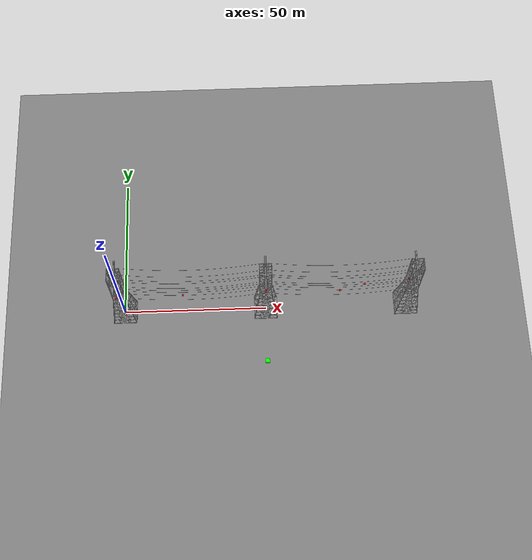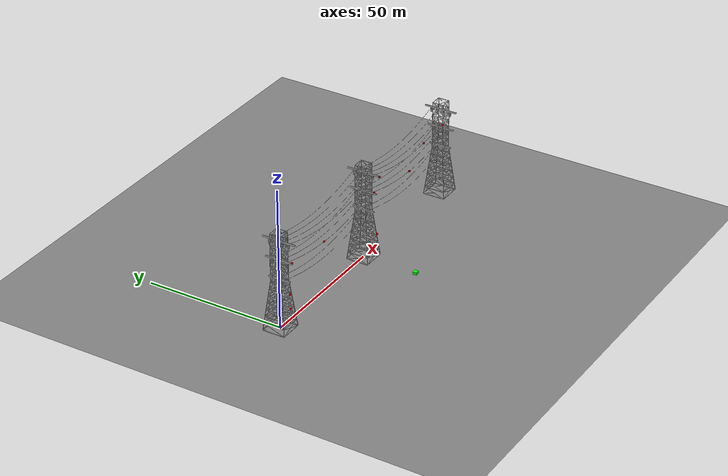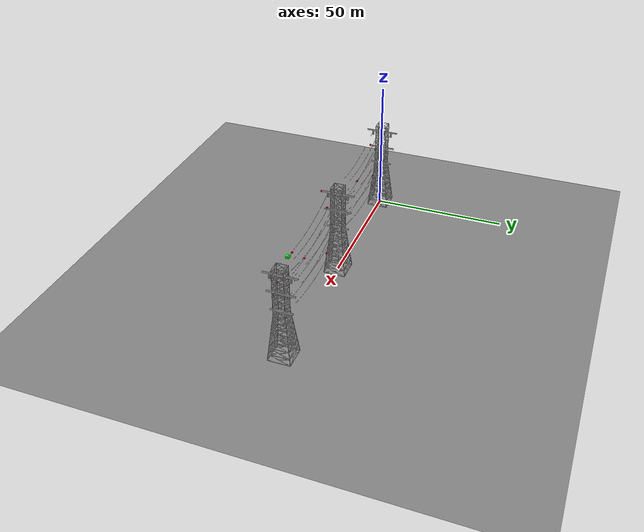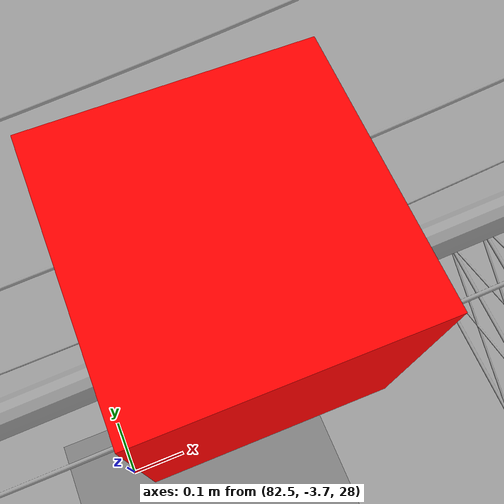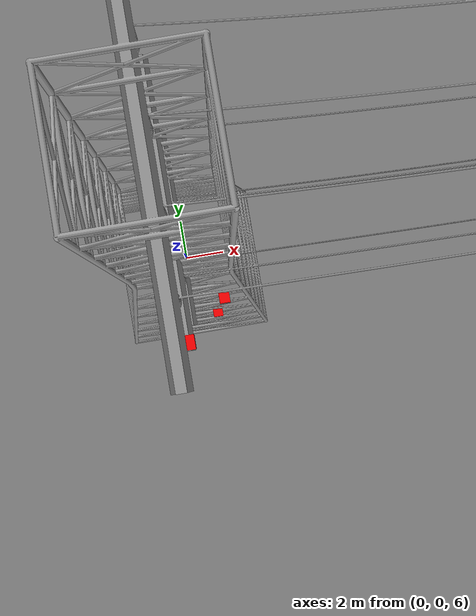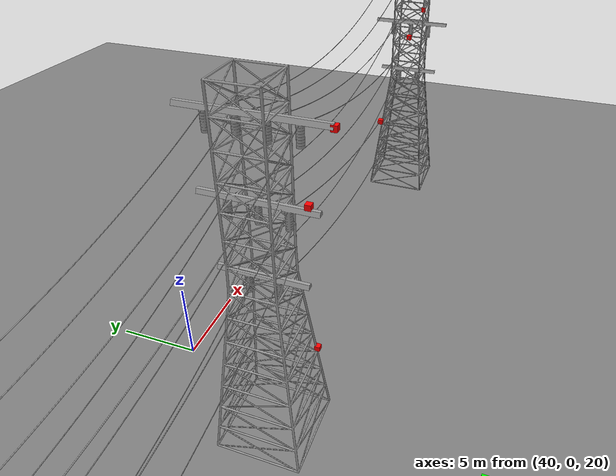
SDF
<?xml version="1.0"?>
<sdf version='1.8'>
  <world name='powerline_10_poi'>
    <!-- Set gravity vector -->
  <gravity>0 0 -9.8</gravity>
    <!-- Basic lighting -->
    <light name='sun' type='directional'>
      <cast_shadows>true</cast_shadows>
      <pose>0 0 10 0 -0 0</pose>
      <diffuse>0.8 0.8 0.8 1</diffuse>
      <specular>0.1 0.1 0.1 1</specular>
      <attenuation>
        <range>1000</range>
        <constant>0.9</constant>
        <linear>0.01</linear>
        <quadratic>0.001</quadratic>
      </attenuation>
      <direction>-0.5 0.5 -1</direction>
    </light>

    <!-- Ground plane -->
    <model name='ground_plane'>
      <static>true</static>
      <link name='link'>
        <collision name='collision'>
          <geometry>
            <plane>
              <normal>0 0 1</normal>
              <size>2000 2000</size>
            </plane>
          </geometry>
          <surface>
            <friction>
              <ode>
                <mu>100</mu>
                <mu2>50</mu2>
              </ode>
            </friction>
          </surface>
        </collision>
        <visual name='visual'>
          <cast_shadows>false</cast_shadows>
          <geometry>
            <plane>
              <normal>0 0 1</normal>
              <size>2000 2000</size>
            </plane>
          </geometry>
          <material>
            <ambient>0.5 0.5 0.5 1</ambient>
            <diffuse>0.5 0.5 0.5 1</diffuse>
            <specular>0.1 0.1 0.1 1</specular>
          </material>
        </visual>
      </link>
    </model>

    <!-- The Powerline model -->
    <model name='powerline'>
      <pose>0 0 0 0 0 0</pose>
      <static>true</static>
      <link name='body'>
        <collision name='collision'>
          <geometry>
            <mesh>
              <uri>model://powerline/powerLine.stl</uri>
              <scale>1 1 1</scale>
            </mesh>
          </geometry>
          <surface>
            <friction>
              <ode>
                <mu>0.8</mu>
                <mu2>0.8</mu2>
              </ode>
            </friction>
          </surface>
        </collision>
        <visual name='visual'>
          <geometry>
            <mesh>
              <uri>model://powerline/powerLine.stl</uri>
            </mesh>
          </geometry>
          <material>
            <ambient>0.6 0.6 0.6 1</ambient>
            <diffuse>0.6 0.6 0.6 1</diffuse>
            <specular>0.1 0.1 0.1 1</specular>
          </material>
        </visual>
      </link>
    </model>

    <!-- GCS Model (Box for now)-->
    <model name='gcs'>
      <pose>50 -20 0 0.0 0.0 0.0</pose>
      <static>true</static>
      <link name='link'>
        <collision name='collision'>
          <geometry>
            <box>
              <size>1.5 1.5 1.5</size>
            </box>
          </geometry>
          <surface>
            <friction>
              <ode>
                <mu>0.8</mu>
                <mu2>0.8</mu2>
              </ode>
            </friction>
          </surface>
        </collision>
        <visual name='visual'>
          <geometry>
            <box>
              <size>1.5 1.5 1.5</size>
            </box>
          </geometry>
          <material>
            <ambient>0.0 1.0 0.0 1.0</ambient>
            <diffuse>0.0 1.0 0.0 1.0</diffuse>
            <specular>0.0 0.2 0.0 1.0</specular>
          </material>
        </visual>
      </link>
    </model>

<!-- Points of Interest (POI) -->
    <model name="poi_0000">
    <static>true</static>
    <link name="link">
      <visual name="visual">
        <geometry>
          <box>
            <size>0.5 0.5 0.5</size>
          </box>
        </geometry>
        <material>
          <ambient>1 0 0 1</ambient>
          <diffuse>1 0 0 1</diffuse>
          <specular>0.2 0 0 1</specular>
        </material>
      </visual>
    </link>
    <pose>0.08 -4.728 25.428 0.0 0.0 0.0</pose>
  </model>

  <model name="poi_0001">
    <static>true</static>
    <link name="link">
      <visual name="visual">
        <geometry>
          <box>
            <size>0.5 0.5 0.5</size>
          </box>
        </geometry>
        <material>
          <ambient>1 0 0 1</ambient>
          <diffuse>1 0 0 1</diffuse>
          <specular>0.2 0 0 1</specular>
        </material>
      </visual>
    </link>
    <pose>1.21 -3.25 7.54 0.0 0.0 0.0</pose>
  </model>

  <model name="poi_0002">
    <static>true</static>
    <link name="link">
      <visual name="visual">
        <geometry>
          <box>
            <size>0.5 0.5 0.5</size>
          </box>
        </geometry>
        <material>
          <ambient>1 0 0 1</ambient>
          <diffuse>1 0 0 1</diffuse>
          <specular>0.2 0 0 1</specular>
        </material>
      </visual>
    </link>
    <pose>97.88 -2.04 27.57 0.0 0.0 0.0</pose>
  </model>

  <model name="poi_0003">
    <static>true</static>
    <link name="link">
      <visual name="visual">
        <geometry>
          <box>
            <size>0.5 0.5 0.5</size>
          </box>
        </geometry>
        <material>
          <ambient>1 0 0 1</ambient>
          <diffuse>1 0 0 1</diffuse>
          <specular>0.2 0 0 1</specular>
        </material>
      </visual>
    </link>
    <pose>50.02 -6.01 32.07 0.0 0.0 0.0</pose>
  </model>

  <model name="poi_0004">
    <static>true</static>
    <link name="link">
      <visual name="visual">
        <geometry>
          <box>
            <size>0.5 0.5 0.5</size>
          </box>
        </geometry>
        <material>
          <ambient>1 0 0 1</ambient>
          <diffuse>1 0 0 1</diffuse>
          <specular>0.2 0 0 1</specular>
        </material>
      </visual>
    </link>
    <pose>21.93 -2.5944 21.20 0.0 0.0 0.0</pose>
  </model>

  <model name="poi_0005">
    <static>true</static>
    <link name="link">
      <visual name="visual">
        <geometry>
          <box>
            <size>0.5 0.5 0.5</size>
          </box>
        </geometry>
        <material>
          <ambient>1 0 0 1</ambient>
          <diffuse>1 0 0 1</diffuse>
          <specular>0.2 0 0 1</specular>
        </material>
      </visual>
    </link>
    <pose>50.04 -4.05 25.5996 0.0 0.0 0.0</pose>
  </model>

  <model name="poi_0006">
    <static>true</static>
    <link name="link">
      <visual name="visual">
        <geometry>
          <box>
            <size>0.5 0.5 0.5</size>
          </box>
        </geometry>
        <material>
          <ambient>1 0 0 1</ambient>
          <diffuse>1 0 0 1</diffuse>
          <specular>0.2 0 0 1</specular>
        </material>
      </visual>
    </link>
    <pose>75.04 -2.5487 20.95 0.0 0.0 0.0</pose>
  </model>

  <model name="poi_0007">
    <static>true</static>
    <link name="link">
      <visual name="visual">
        <geometry>
          <box>
            <size>0.5 0.5 0.5</size>
          </box>
        </geometry>
        <material>
          <ambient>1 0 0 1</ambient>
          <diffuse>1 0 0 1</diffuse>
          <specular>0.2 0 0 1</specular>
        </material>
      </visual>
    </link>
    <pose>1.62 -2.823 12.45 0.0 0.0 0.0</pose>
  </model>

  <model name="poi_0008">
    <static>true</static>
    <link name="link">
      <visual name="visual">
        <geometry>
          <box>
            <size>0.5 0.5 0.5</size>
          </box>
        </geometry>
        <material>
          <ambient>1 0 0 1</ambient>
          <diffuse>1 0 0 1</diffuse>
          <specular>0.2 0 0 1</specular>
        </material>
      </visual>
    </link>
    <pose>82.78 -3.48 28.23 0.0 0.0 0.0</pose>
  </model>

  <model name="poi_0009">
    <static>true</static>
    <link name="link">
      <visual name="visual">
        <geometry>
          <box>
            <size>0.5 0.5 0.5</size>
          </box>
        </geometry>
        <material>
          <ambient>1 0 0 1</ambient>
          <diffuse>1 0 0 1</diffuse>
          <specular>0.2 0 0 1</specular>
        </material>
      </visual>
    </link>
    <pose>53.119 -3.261 8.09 0.0 0.0 0.0</pose>
  </model>

    <!-- False POIs -->

    <!-- Physics -->
    <physics name='default_physics' default='true' type='ode'>
      <max_step_size>0.002</max_step_size>
      <real_time_factor>1.0</real_time_factor>
      <real_time_update_rate>500</real_time_update_rate>
    </physics>

    <!-- Scene settings -->
    <scene>
      <ambient>0.4 0.4 0.4 1</ambient>
      <background>0.7 0.7 0.7 1</background>
      <shadows>true</shadows>
    </scene>

    <!-- Spherical coordinates -->
    <spherical_coordinates>
      <surface_model>EARTH_WGS84</surface_model>
      <latitude_deg>0</latitude_deg>
      <longitude_deg>0</longitude_deg>
      <elevation>0</elevation>
      <heading_deg>0</heading_deg>
    </spherical_coordinates>

    <!-- Obstacle Bounding Boxes (with collision) -->

    <!-- Tower 0 bounding box -->
    <!-- bottom=0, top=37, center_z=18.5, size_z=37 -->

    <!-- Tower 1 bounding box -->

    <!-- Tower 2 bounding box -->

    <!-- Wire Span 0 - SOLID box covering all wire levels (z=13 to z=31) -->
    <!-- Size: 44 x 16 x 18 (half: 22 x 8 x 9), center at z=22 -->

    <!-- Wire Span 1 - SOLID box covering all wire levels (z=13 to z=31) -->
    <!-- Size: 44 x 16 x 18 (half: 22 x 8 x 9), center at z=22 -->

  </world>
</sdf>
